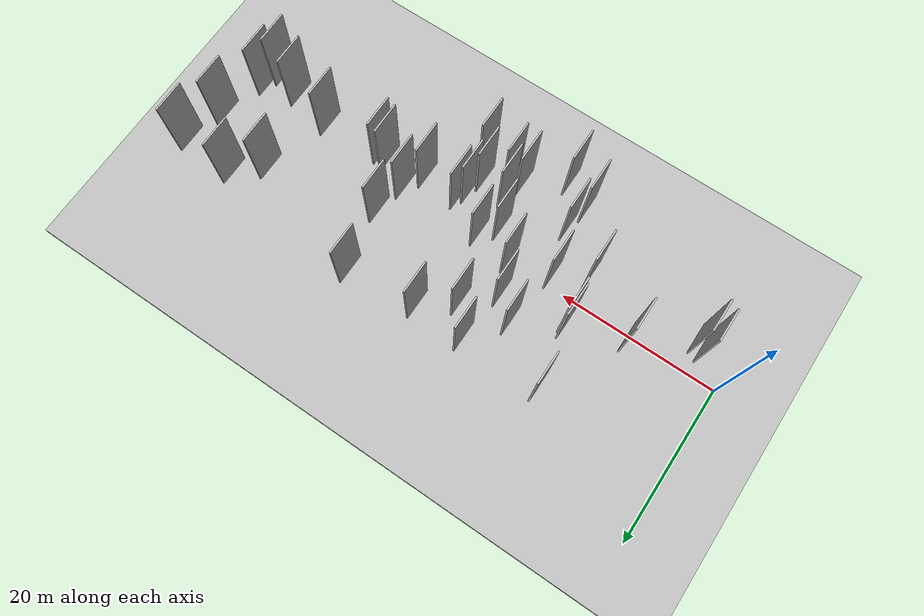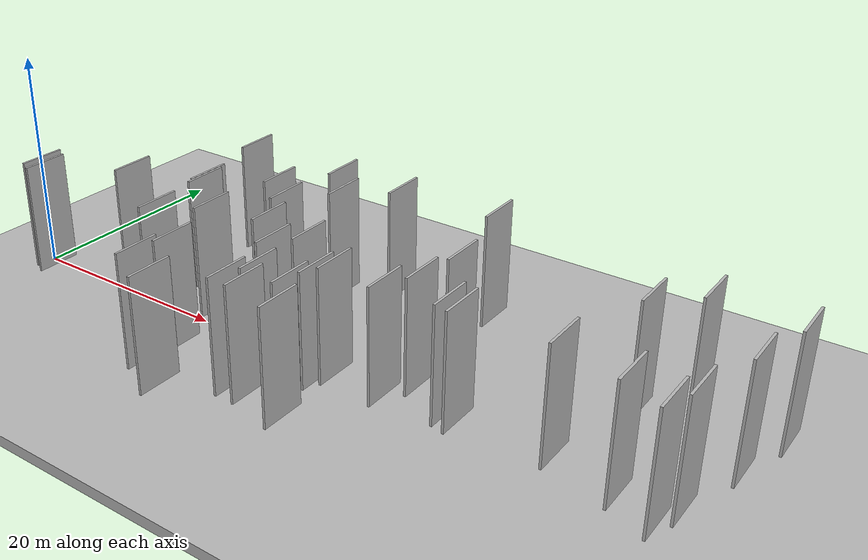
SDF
<?xml version="1.0" encoding="utf-8"?>

<sdf version="1.6">

   <world name="default">

      <gui fullscreen="0">

         <camera name="user_camera">

            <pose>-15 0 4.57585 0 0 0</pose>

            <view_controller>orbit</view_controller>

         </camera>

      </gui>

      <scene>

         <sky>

           <clouds>

             <speed>12</speed>

           </clouds>

         </sky>

         <ambient>0.4 0.4 0.4 1</ambient>

         <background>0.7 0.7 0.7 1</background>

         <shadows>1</shadows>

      </scene>

      <gravity>0 0 -9.8066</gravity>

      <magnetic_field>6e-06 2.3e-05 -4.2e-05</magnetic_field>

      <physics default="0" name="default_physics" type="ode">

         <ode>

            <solver>

               <type>quick</type>

               <iters>10</iters>

               <sor>1.0</sor>

               <use_dynamic_moi_rescaling>0</use_dynamic_moi_rescaling>

            </solver>

            <constraints>

               <cfm>0</cfm>

               <erp>0.2</erp>

               <contact_max_correcting_vel>100</contact_max_correcting_vel>

               <contact_surface_layer>0.001</contact_surface_layer>

            </constraints>

         </ode>

         <max_step_size>0.004</max_step_size>

         <real_time_factor>1</real_time_factor>

         <real_time_update_rate>250</real_time_update_rate>

      </physics>

      <light name="sun" type="directional">

         <cast_shadows>1</cast_shadows>

         <pose>0 0 10 0 0 0</pose>

         <diffuse>0.8 0.8 0.8 1</diffuse>

         <specular>0.2 0.2 0.2 1</specular>

         <attenuation>

            <range>1000</range>

            <constant>0.9</constant>

            <linear>0.01</linear>

            <quadratic>0.001</quadratic>

         </attenuation>

         <direction>-0.5 0.1 -0.9</direction>

      </light>

      <include>

         <name>ground_plane_1</name>

         <uri>model://HANNAS_ground_plane</uri>

         <pose>0 0 0  0 0 0</pose>

      </include>

      <include>

         <name>ground_plane_2</name>

         <uri>model://HANNAS_ground_plane</uri>

         <pose>100 0 0  0 0 0</pose>

      </include>

      <model name="HANNAS_wall_1">

         <static>1</static>

         <pose frame="">18.5343 -3.1271 2.5 0.000000 0.000000 1.570796</pose>

         <link name="link">

            <pose frame="">0 0 5.00 0 0 0</pose>

            <collision name="collision">

               <geometry>

                  <box>

                     <size>4.00 0.2 10.00</size>

                  </box>

               </geometry>

               <max_contacts>10</max_contacts>

               <surface>

                  <contact>

                     <ode/>

                  </contact>

                  <bounce/>

                  <friction>

                     <torsional>

                        <ode/>

                     </torsional>

                     <ode/>

                  </friction>

               </surface>

            </collision>

            <visual name="visual">

               <cast_shadows>0</cast_shadows>

               <geometry>

                  <box>

                     <size>4.00 0.2 10.00</size>

                  </box>

               </geometry>

               <material>

                  <script>

                     <uri>model://HANNAS_wall/materials/scripts</uri>

                     <uri>model://HANNAS_wall/materials/textures</uri>

                     <name>vrc/HANNAS_wall</name>

                  </script>

               </material>

            </visual>

            <self_collide>0</self_collide>

            <enable_wind>0</enable_wind>

            <kinematic>0</kinematic>

         </link>

      </model>

      <model name="HANNAS_wall_2">

         <static>1</static>

         <pose frame="">3.8009 -2.7287 2.5 0.000000 0.000000 1.570796</pose>

         <link name="link">

            <pose frame="">0 0 5.00 0 0 0</pose>

            <collision name="collision">

               <geometry>

                  <box>

                     <size>4.00 0.2 10.00</size>

                  </box>

               </geometry>

               <max_contacts>10</max_contacts>

               <surface>

                  <contact>

                     <ode/>

                  </contact>

                  <bounce/>

                  <friction>

                     <torsional>

                        <ode/>

                     </torsional>

                     <ode/>

                  </friction>

               </surface>

            </collision>

            <visual name="visual">

               <cast_shadows>0</cast_shadows>

               <geometry>

                  <box>

                     <size>4.00 0.2 10.00</size>

                  </box>

               </geometry>

               <material>

                  <script>

                     <uri>model://HANNAS_wall/materials/scripts</uri>

                     <uri>model://HANNAS_wall/materials/textures</uri>

                     <name>vrc/HANNAS_wall</name>

                  </script>

               </material>

            </visual>

            <self_collide>0</self_collide>

            <enable_wind>0</enable_wind>

            <kinematic>0</kinematic>

         </link>

      </model>

      <model name="HANNAS_wall_3">

         <static>1</static>

         <pose frame="">57.2128 6.6698 2.5 0.000000 0.000000 1.570796</pose>

         <link name="link">

            <pose frame="">0 0 5.00 0 0 0</pose>

            <collision name="collision">

               <geometry>

                  <box>

                     <size>4.00 0.2 10.00</size>

                  </box>

               </geometry>

               <max_contacts>10</max_contacts>

               <surface>

                  <contact>

                     <ode/>

                  </contact>

                  <bounce/>

                  <friction>

                     <torsional>

                        <ode/>

                     </torsional>

                     <ode/>

                  </friction>

               </surface>

            </collision>

            <visual name="visual">

               <cast_shadows>0</cast_shadows>

               <geometry>

                  <box>

                     <size>4.00 0.2 10.00</size>

                  </box>

               </geometry>

               <material>

                  <script>

                     <uri>model://HANNAS_wall/materials/scripts</uri>

                     <uri>model://HANNAS_wall/materials/textures</uri>

                     <name>vrc/HANNAS_wall</name>

                  </script>

               </material>

            </visual>

            <self_collide>0</self_collide>

            <enable_wind>0</enable_wind>

            <kinematic>0</kinematic>

         </link>

      </model>

      <model name="HANNAS_wall_4">

         <static>1</static>

         <pose frame="">29.1530 7.8941 2.5 0.000000 0.000000 1.570796</pose>

         <link name="link">

            <pose frame="">0 0 5.00 0 0 0</pose>

            <collision name="collision">

               <geometry>

                  <box>

                     <size>4.00 0.2 10.00</size>

                  </box>

               </geometry>

               <max_contacts>10</max_contacts>

               <surface>

                  <contact>

                     <ode/>

                  </contact>

                  <bounce/>

                  <friction>

                     <torsional>

                        <ode/>

                     </torsional>

                     <ode/>

                  </friction>

               </surface>

            </collision>

            <visual name="visual">

               <cast_shadows>0</cast_shadows>

               <geometry>

                  <box>

                     <size>4.00 0.2 10.00</size>

                  </box>

               </geometry>

               <material>

                  <script>

                     <uri>model://HANNAS_wall/materials/scripts</uri>

                     <uri>model://HANNAS_wall/materials/textures</uri>

                     <name>vrc/HANNAS_wall</name>

                  </script>

               </material>

            </visual>

            <self_collide>0</self_collide>

            <enable_wind>0</enable_wind>

            <kinematic>0</kinematic>

         </link>

      </model>

      <model name="HANNAS_wall_5">

         <static>1</static>

         <pose frame="">35.2060 -6.3021 2.5 0.000000 0.000000 1.570796</pose>

         <link name="link">

            <pose frame="">0 0 5.00 0 0 0</pose>

            <collision name="collision">

               <geometry>

                  <box>

                     <size>4.00 0.2 10.00</size>

                  </box>

               </geometry>

               <max_contacts>10</max_contacts>

               <surface>

                  <contact>

                     <ode/>

                  </contact>

                  <bounce/>

                  <friction>

                     <torsional>

                        <ode/>

                     </torsional>

                     <ode/>

                  </friction>

               </surface>

            </collision>

            <visual name="visual">

               <cast_shadows>0</cast_shadows>

               <geometry>

                  <box>

                     <size>4.00 0.2 10.00</size>

                  </box>

               </geometry>

               <material>

                  <script>

                     <uri>model://HANNAS_wall/materials/scripts</uri>

                     <uri>model://HANNAS_wall/materials/textures</uri>

                     <name>vrc/HANNAS_wall</name>

                  </script>

               </material>

            </visual>

            <self_collide>0</self_collide>

            <enable_wind>0</enable_wind>

            <kinematic>0</kinematic>

         </link>

      </model>

      <model name="HANNAS_wall_6">

         <static>1</static>

         <pose frame="">54.7465 -1.9026 2.5 0.000000 0.000000 1.570796</pose>

         <link name="link">

            <pose frame="">0 0 5.00 0 0 0</pose>

            <collision name="collision">

               <geometry>

                  <box>

                     <size>4.00 0.2 10.00</size>

                  </box>

               </geometry>

               <max_contacts>10</max_contacts>

               <surface>

                  <contact>

                     <ode/>

                  </contact>

                  <bounce/>

                  <friction>

                     <torsional>

                        <ode/>

                     </torsional>

                     <ode/>

                  </friction>

               </surface>

            </collision>

            <visual name="visual">

               <cast_shadows>0</cast_shadows>

               <geometry>

                  <box>

                     <size>4.00 0.2 10.00</size>

                  </box>

               </geometry>

               <material>

                  <script>

                     <uri>model://HANNAS_wall/materials/scripts</uri>

                     <uri>model://HANNAS_wall/materials/textures</uri>

                     <name>vrc/HANNAS_wall</name>

                  </script>

               </material>

            </visual>

            <self_collide>0</self_collide>

            <enable_wind>0</enable_wind>

            <kinematic>0</kinematic>

         </link>

      </model>

      <model name="HANNAS_wall_7">

         <static>1</static>

         <pose frame="">4.8505 -3.2533 2.5 0.000000 0.000000 1.570796</pose>

         <link name="link">

            <pose frame="">0 0 5.00 0 0 0</pose>

            <collision name="collision">

               <geometry>

                  <box>

                     <size>4.00 0.2 10.00</size>

                  </box>

               </geometry>

               <max_contacts>10</max_contacts>

               <surface>

                  <contact>

                     <ode/>

                  </contact>

                  <bounce/>

                  <friction>

                     <torsional>

                        <ode/>

                     </torsional>

                     <ode/>

                  </friction>

               </surface>

            </collision>

            <visual name="visual">

               <cast_shadows>0</cast_shadows>

               <geometry>

                  <box>

                     <size>4.00 0.2 10.00</size>

                  </box>

               </geometry>

               <material>

                  <script>

                     <uri>model://HANNAS_wall/materials/scripts</uri>

                     <uri>model://HANNAS_wall/materials/textures</uri>

                     <name>vrc/HANNAS_wall</name>

                  </script>

               </material>

            </visual>

            <self_collide>0</self_collide>

            <enable_wind>0</enable_wind>

            <kinematic>0</kinematic>

         </link>

      </model>

      <model name="HANNAS_wall_8">

         <static>1</static>

         <pose frame="">32.0122 -0.2082 2.5 0.000000 0.000000 1.570796</pose>

         <link name="link">

            <pose frame="">0 0 5.00 0 0 0</pose>

            <collision name="collision">

               <geometry>

                  <box>

                     <size>4.00 0.2 10.00</size>

                  </box>

               </geometry>

               <max_contacts>10</max_contacts>

               <surface>

                  <contact>

                     <ode/>

                  </contact>

                  <bounce/>

                  <friction>

                     <torsional>

                        <ode/>

                     </torsional>

                     <ode/>

                  </friction>

               </surface>

            </collision>

            <visual name="visual">

               <cast_shadows>0</cast_shadows>

               <geometry>

                  <box>

                     <size>4.00 0.2 10.00</size>

                  </box>

               </geometry>

               <material>

                  <script>

                     <uri>model://HANNAS_wall/materials/scripts</uri>

                     <uri>model://HANNAS_wall/materials/textures</uri>

                     <name>vrc/HANNAS_wall</name>

                  </script>

               </material>

            </visual>

            <self_collide>0</self_collide>

            <enable_wind>0</enable_wind>

            <kinematic>0</kinematic>

         </link>

      </model>

      <model name="HANNAS_wall_9">

         <static>1</static>

         <pose frame="">22.2011 -0.6261 2.5 0.000000 0.000000 1.570796</pose>

         <link name="link">

            <pose frame="">0 0 5.00 0 0 0</pose>

            <collision name="collision">

               <geometry>

                  <box>

                     <size>4.00 0.2 10.00</size>

                  </box>

               </geometry>

               <max_contacts>10</max_contacts>

               <surface>

                  <contact>

                     <ode/>

                  </contact>

                  <bounce/>

                  <friction>

                     <torsional>

                        <ode/>

                     </torsional>

                     <ode/>

                  </friction>

               </surface>

            </collision>

            <visual name="visual">

               <cast_shadows>0</cast_shadows>

               <geometry>

                  <box>

                     <size>4.00 0.2 10.00</size>

                  </box>

               </geometry>

               <material>

                  <script>

                     <uri>model://HANNAS_wall/materials/scripts</uri>

                     <uri>model://HANNAS_wall/materials/textures</uri>

                     <name>vrc/HANNAS_wall</name>

                  </script>

               </material>

            </visual>

            <self_collide>0</self_collide>

            <enable_wind>0</enable_wind>

            <kinematic>0</kinematic>

         </link>

      </model>

      <model name="HANNAS_wall_10">

         <static>1</static>

         <pose frame="">33.0554 10.9576 2.5 0.000000 0.000000 1.570796</pose>

         <link name="link">

            <pose frame="">0 0 5.00 0 0 0</pose>

            <collision name="collision">

               <geometry>

                  <box>

                     <size>4.00 0.2 10.00</size>

                  </box>

               </geometry>

               <max_contacts>10</max_contacts>

               <surface>

                  <contact>

                     <ode/>

                  </contact>

                  <bounce/>

                  <friction>

                     <torsional>

                        <ode/>

                     </torsional>

                     <ode/>

                  </friction>

               </surface>

            </collision>

            <visual name="visual">

               <cast_shadows>0</cast_shadows>

               <geometry>

                  <box>

                     <size>4.00 0.2 10.00</size>

                  </box>

               </geometry>

               <material>

                  <script>

                     <uri>model://HANNAS_wall/materials/scripts</uri>

                     <uri>model://HANNAS_wall/materials/textures</uri>

                     <name>vrc/HANNAS_wall</name>

                  </script>

               </material>

            </visual>

            <self_collide>0</self_collide>

            <enable_wind>0</enable_wind>

            <kinematic>0</kinematic>

         </link>

      </model>

      <model name="HANNAS_wall_11">

         <static>1</static>

         <pose frame="">42.4873 -0.2093 2.5 0.000000 0.000000 1.570796</pose>

         <link name="link">

            <pose frame="">0 0 5.00 0 0 0</pose>

            <collision name="collision">

               <geometry>

                  <box>

                     <size>4.00 0.2 10.00</size>

                  </box>

               </geometry>

               <max_contacts>10</max_contacts>

               <surface>

                  <contact>

                     <ode/>

                  </contact>

                  <bounce/>

                  <friction>

                     <torsional>

                        <ode/>

                     </torsional>

                     <ode/>

                  </friction>

               </surface>

            </collision>

            <visual name="visual">

               <cast_shadows>0</cast_shadows>

               <geometry>

                  <box>

                     <size>4.00 0.2 10.00</size>

                  </box>

               </geometry>

               <material>

                  <script>

                     <uri>model://HANNAS_wall/materials/scripts</uri>

                     <uri>model://HANNAS_wall/materials/textures</uri>

                     <name>vrc/HANNAS_wall</name>

                  </script>

               </material>

            </visual>

            <self_collide>0</self_collide>

            <enable_wind>0</enable_wind>

            <kinematic>0</kinematic>

         </link>

      </model>

      <model name="HANNAS_wall_12">

         <static>1</static>

         <pose frame="">17.9022 3.5335 2.5 0.000000 0.000000 1.570796</pose>

         <link name="link">

            <pose frame="">0 0 5.00 0 0 0</pose>

            <collision name="collision">

               <geometry>

                  <box>

                     <size>4.00 0.2 10.00</size>

                  </box>

               </geometry>

               <max_contacts>10</max_contacts>

               <surface>

                  <contact>

                     <ode/>

                  </contact>

                  <bounce/>

                  <friction>

                     <torsional>

                        <ode/>

                     </torsional>

                     <ode/>

                  </friction>

               </surface>

            </collision>

            <visual name="visual">

               <cast_shadows>0</cast_shadows>

               <geometry>

                  <box>

                     <size>4.00 0.2 10.00</size>

                  </box>

               </geometry>

               <material>

                  <script>

                     <uri>model://HANNAS_wall/materials/scripts</uri>

                     <uri>model://HANNAS_wall/materials/textures</uri>

                     <name>vrc/HANNAS_wall</name>

                  </script>

               </material>

            </visual>

            <self_collide>0</self_collide>

            <enable_wind>0</enable_wind>

            <kinematic>0</kinematic>

         </link>

      </model>

      <model name="HANNAS_wall_13">

         <static>1</static>

         <pose frame="">25.8393 4.4375 2.5 0.000000 0.000000 1.570796</pose>

         <link name="link">

            <pose frame="">0 0 5.00 0 0 0</pose>

            <collision name="collision">

               <geometry>

                  <box>

                     <size>4.00 0.2 10.00</size>

                  </box>

               </geometry>

               <max_contacts>10</max_contacts>

               <surface>

                  <contact>

                     <ode/>

                  </contact>

                  <bounce/>

                  <friction>

                     <torsional>

                        <ode/>

                     </torsional>

                     <ode/>

                  </friction>

               </surface>

            </collision>

            <visual name="visual">

               <cast_shadows>0</cast_shadows>

               <geometry>

                  <box>

                     <size>4.00 0.2 10.00</size>

                  </box>

               </geometry>

               <material>

                  <script>

                     <uri>model://HANNAS_wall/materials/scripts</uri>

                     <uri>model://HANNAS_wall/materials/textures</uri>

                     <name>vrc/HANNAS_wall</name>

                  </script>

               </material>

            </visual>

            <self_collide>0</self_collide>

            <enable_wind>0</enable_wind>

            <kinematic>0</kinematic>

         </link>

      </model>

      <model name="HANNAS_wall_14">

         <static>1</static>

         <pose frame="">63.3022 -4.3119 2.5 0.000000 0.000000 1.570796</pose>

         <link name="link">

            <pose frame="">0 0 5.00 0 0 0</pose>

            <collision name="collision">

               <geometry>

                  <box>

                     <size>4.00 0.2 10.00</size>

                  </box>

               </geometry>

               <max_contacts>10</max_contacts>

               <surface>

                  <contact>

                     <ode/>

                  </contact>

                  <bounce/>

                  <friction>

                     <torsional>

                        <ode/>

                     </torsional>

                     <ode/>

                  </friction>

               </surface>

            </collision>

            <visual name="visual">

               <cast_shadows>0</cast_shadows>

               <geometry>

                  <box>

                     <size>4.00 0.2 10.00</size>

                  </box>

               </geometry>

               <material>

                  <script>

                     <uri>model://HANNAS_wall/materials/scripts</uri>

                     <uri>model://HANNAS_wall/materials/textures</uri>

                     <name>vrc/HANNAS_wall</name>

                  </script>

               </material>

            </visual>

            <self_collide>0</self_collide>

            <enable_wind>0</enable_wind>

            <kinematic>0</kinematic>

         </link>

      </model>

      <model name="HANNAS_wall_15">

         <static>1</static>

         <pose frame="">23.1520 -9.7399 2.5 0.000000 0.000000 1.570796</pose>

         <link name="link">

            <pose frame="">0 0 5.00 0 0 0</pose>

            <collision name="collision">

               <geometry>

                  <box>

                     <size>4.00 0.2 10.00</size>

                  </box>

               </geometry>

               <max_contacts>10</max_contacts>

               <surface>

                  <contact>

                     <ode/>

                  </contact>

                  <bounce/>

                  <friction>

                     <torsional>

                        <ode/>

                     </torsional>

                     <ode/>

                  </friction>

               </surface>

            </collision>

            <visual name="visual">

               <cast_shadows>0</cast_shadows>

               <geometry>

                  <box>

                     <size>4.00 0.2 10.00</size>

                  </box>

               </geometry>

               <material>

                  <script>

                     <uri>model://HANNAS_wall/materials/scripts</uri>

                     <uri>model://HANNAS_wall/materials/textures</uri>

                     <name>vrc/HANNAS_wall</name>

                  </script>

               </material>

            </visual>

            <self_collide>0</self_collide>

            <enable_wind>0</enable_wind>

            <kinematic>0</kinematic>

         </link>

      </model>

      <model name="HANNAS_wall_16">

         <static>1</static>

         <pose frame="">16.6386 11.2837 2.5 0.000000 0.000000 1.570796</pose>

         <link name="link">

            <pose frame="">0 0 5.00 0 0 0</pose>

            <collision name="collision">

               <geometry>

                  <box>

                     <size>4.00 0.2 10.00</size>

                  </box>

               </geometry>

               <max_contacts>10</max_contacts>

               <surface>

                  <contact>

                     <ode/>

                  </contact>

                  <bounce/>

                  <friction>

                     <torsional>

                        <ode/>

                     </torsional>

                     <ode/>

                  </friction>

               </surface>

            </collision>

            <visual name="visual">

               <cast_shadows>0</cast_shadows>

               <geometry>

                  <box>

                     <size>4.00 0.2 10.00</size>

                  </box>

               </geometry>

               <material>

                  <script>

                     <uri>model://HANNAS_wall/materials/scripts</uri>

                     <uri>model://HANNAS_wall/materials/textures</uri>

                     <name>vrc/HANNAS_wall</name>

                  </script>

               </material>

            </visual>

            <self_collide>0</self_collide>

            <enable_wind>0</enable_wind>

            <kinematic>0</kinematic>

         </link>

      </model>

      <model name="HANNAS_wall_17">

         <static>1</static>

         <pose frame="">46.1062 -2.1696 2.5 0.000000 0.000000 1.570796</pose>

         <link name="link">

            <pose frame="">0 0 5.00 0 0 0</pose>

            <collision name="collision">

               <geometry>

                  <box>

                     <size>4.00 0.2 10.00</size>

                  </box>

               </geometry>

               <max_contacts>10</max_contacts>

               <surface>

                  <contact>

                     <ode/>

                  </contact>

                  <bounce/>

                  <friction>

                     <torsional>

                        <ode/>

                     </torsional>

                     <ode/>

                  </friction>

               </surface>

            </collision>

            <visual name="visual">

               <cast_shadows>0</cast_shadows>

               <geometry>

                  <box>

                     <size>4.00 0.2 10.00</size>

                  </box>

               </geometry>

               <material>

                  <script>

                     <uri>model://HANNAS_wall/materials/scripts</uri>

                     <uri>model://HANNAS_wall/materials/textures</uri>

                     <name>vrc/HANNAS_wall</name>

                  </script>

               </material>

            </visual>

            <self_collide>0</self_collide>

            <enable_wind>0</enable_wind>

            <kinematic>0</kinematic>

         </link>

      </model>

      <model name="HANNAS_wall_18">

         <static>1</static>

         <pose frame="">18.1686 2.8685 2.5 0.000000 0.000000 1.570796</pose>

         <link name="link">

            <pose frame="">0 0 5.00 0 0 0</pose>

            <collision name="collision">

               <geometry>

                  <box>

                     <size>4.00 0.2 10.00</size>

                  </box>

               </geometry>

               <max_contacts>10</max_contacts>

               <surface>

                  <contact>

                     <ode/>

                  </contact>

                  <bounce/>

                  <friction>

                     <torsional>

                        <ode/>

                     </torsional>

                     <ode/>

                  </friction>

               </surface>

            </collision>

            <visual name="visual">

               <cast_shadows>0</cast_shadows>

               <geometry>

                  <box>

                     <size>4.00 0.2 10.00</size>

                  </box>

               </geometry>

               <material>

                  <script>

                     <uri>model://HANNAS_wall/materials/scripts</uri>

                     <uri>model://HANNAS_wall/materials/textures</uri>

                     <name>vrc/HANNAS_wall</name>

                  </script>

               </material>

            </visual>

            <self_collide>0</self_collide>

            <enable_wind>0</enable_wind>

            <kinematic>0</kinematic>

         </link>

      </model>

      <model name="HANNAS_wall_19">

         <static>1</static>

         <pose frame="">60.4916 9.5534 2.5 0.000000 0.000000 1.570796</pose>

         <link name="link">

            <pose frame="">0 0 5.00 0 0 0</pose>

            <collision name="collision">

               <geometry>

                  <box>

                     <size>4.00 0.2 10.00</size>

                  </box>

               </geometry>

               <max_contacts>10</max_contacts>

               <surface>

                  <contact>

                     <ode/>

                  </contact>

                  <bounce/>

                  <friction>

                     <torsional>

                        <ode/>

                     </torsional>

                     <ode/>

                  </friction>

               </surface>

            </collision>

            <visual name="visual">

               <cast_shadows>0</cast_shadows>

               <geometry>

                  <box>

                     <size>4.00 0.2 10.00</size>

                  </box>

               </geometry>

               <material>

                  <script>

                     <uri>model://HANNAS_wall/materials/scripts</uri>

                     <uri>model://HANNAS_wall/materials/textures</uri>

                     <name>vrc/HANNAS_wall</name>

                  </script>

               </material>

            </visual>

            <self_collide>0</self_collide>

            <enable_wind>0</enable_wind>

            <kinematic>0</kinematic>

         </link>

      </model>

      <model name="HANNAS_wall_20">

         <static>1</static>

         <pose frame="">43.3171 3.9262 2.5 0.000000 0.000000 1.570796</pose>

         <link name="link">

            <pose frame="">0 0 5.00 0 0 0</pose>

            <collision name="collision">

               <geometry>

                  <box>

                     <size>4.00 0.2 10.00</size>

                  </box>

               </geometry>

               <max_contacts>10</max_contacts>

               <surface>

                  <contact>

                     <ode/>

                  </contact>

                  <bounce/>

                  <friction>

                     <torsional>

                        <ode/>

                     </torsional>

                     <ode/>

                  </friction>

               </surface>

            </collision>

            <visual name="visual">

               <cast_shadows>0</cast_shadows>

               <geometry>

                  <box>

                     <size>4.00 0.2 10.00</size>

                  </box>

               </geometry>

               <material>

                  <script>

                     <uri>model://HANNAS_wall/materials/scripts</uri>

                     <uri>model://HANNAS_wall/materials/textures</uri>

                     <name>vrc/HANNAS_wall</name>

                  </script>

               </material>

            </visual>

            <self_collide>0</self_collide>

            <enable_wind>0</enable_wind>

            <kinematic>0</kinematic>

         </link>

      </model>

      <model name="HANNAS_wall_21">

         <static>1</static>

         <pose frame="">32.8287 -8.5125 2.5 0.000000 0.000000 1.570796</pose>

         <link name="link">

            <pose frame="">0 0 5.00 0 0 0</pose>

            <collision name="collision">

               <geometry>

                  <box>

                     <size>4.00 0.2 10.00</size>

                  </box>

               </geometry>

               <max_contacts>10</max_contacts>

               <surface>

                  <contact>

                     <ode/>

                  </contact>

                  <bounce/>

                  <friction>

                     <torsional>

                        <ode/>

                     </torsional>

                     <ode/>

                  </friction>

               </surface>

            </collision>

            <visual name="visual">

               <cast_shadows>0</cast_shadows>

               <geometry>

                  <box>

                     <size>4.00 0.2 10.00</size>

                  </box>

               </geometry>

               <material>

                  <script>

                     <uri>model://HANNAS_wall/materials/scripts</uri>

                     <uri>model://HANNAS_wall/materials/textures</uri>

                     <name>vrc/HANNAS_wall</name>

                  </script>

               </material>

            </visual>

            <self_collide>0</self_collide>

            <enable_wind>0</enable_wind>

            <kinematic>0</kinematic>

         </link>

      </model>

      <model name="HANNAS_wall_22">

         <static>1</static>

         <pose frame="">41.8177 11.7944 2.5 0.000000 0.000000 1.570796</pose>

         <link name="link">

            <pose frame="">0 0 5.00 0 0 0</pose>

            <collision name="collision">

               <geometry>

                  <box>

                     <size>4.00 0.2 10.00</size>

                  </box>

               </geometry>

               <max_contacts>10</max_contacts>

               <surface>

                  <contact>

                     <ode/>

                  </contact>

                  <bounce/>

                  <friction>

                     <torsional>

                        <ode/>

                     </torsional>

                     <ode/>

                  </friction>

               </surface>

            </collision>

            <visual name="visual">

               <cast_shadows>0</cast_shadows>

               <geometry>

                  <box>

                     <size>4.00 0.2 10.00</size>

                  </box>

               </geometry>

               <material>

                  <script>

                     <uri>model://HANNAS_wall/materials/scripts</uri>

                     <uri>model://HANNAS_wall/materials/textures</uri>

                     <name>vrc/HANNAS_wall</name>

                  </script>

               </material>

            </visual>

            <self_collide>0</self_collide>

            <enable_wind>0</enable_wind>

            <kinematic>0</kinematic>

         </link>

      </model>

      <model name="HANNAS_wall_23">

         <static>1</static>

         <pose frame="">27.3106 0.5772 2.5 0.000000 0.000000 1.570796</pose>

         <link name="link">

            <pose frame="">0 0 5.00 0 0 0</pose>

            <collision name="collision">

               <geometry>

                  <box>

                     <size>4.00 0.2 10.00</size>

                  </box>

               </geometry>

               <max_contacts>10</max_contacts>

               <surface>

                  <contact>

                     <ode/>

                  </contact>

                  <bounce/>

                  <friction>

                     <torsional>

                        <ode/>

                     </torsional>

                     <ode/>

                  </friction>

               </surface>

            </collision>

            <visual name="visual">

               <cast_shadows>0</cast_shadows>

               <geometry>

                  <box>

                     <size>4.00 0.2 10.00</size>

                  </box>

               </geometry>

               <material>

                  <script>

                     <uri>model://HANNAS_wall/materials/scripts</uri>

                     <uri>model://HANNAS_wall/materials/textures</uri>

                     <name>vrc/HANNAS_wall</name>

                  </script>

               </material>

            </visual>

            <self_collide>0</self_collide>

            <enable_wind>0</enable_wind>

            <kinematic>0</kinematic>

         </link>

      </model>

      <model name="HANNAS_wall_24">

         <static>1</static>

         <pose frame="">26.5487 -11.6749 2.5 0.000000 0.000000 1.570796</pose>

         <link name="link">

            <pose frame="">0 0 5.00 0 0 0</pose>

            <collision name="collision">

               <geometry>

                  <box>

                     <size>4.00 0.2 10.00</size>

                  </box>

               </geometry>

               <max_contacts>10</max_contacts>

               <surface>

                  <contact>

                     <ode/>

                  </contact>

                  <bounce/>

                  <friction>

                     <torsional>

                        <ode/>

                     </torsional>

                     <ode/>

                  </friction>

               </surface>

            </collision>

            <visual name="visual">

               <cast_shadows>0</cast_shadows>

               <geometry>

                  <box>

                     <size>4.00 0.2 10.00</size>

                  </box>

               </geometry>

               <material>

                  <script>

                     <uri>model://HANNAS_wall/materials/scripts</uri>

                     <uri>model://HANNAS_wall/materials/textures</uri>

                     <name>vrc/HANNAS_wall</name>

                  </script>

               </material>

            </visual>

            <self_collide>0</self_collide>

            <enable_wind>0</enable_wind>

            <kinematic>0</kinematic>

         </link>

      </model>

      <model name="HANNAS_wall_25">

         <static>1</static>

         <pose frame="">31.9966 -6.0522 2.5 0.000000 0.000000 1.570796</pose>

         <link name="link">

            <pose frame="">0 0 5.00 0 0 0</pose>

            <collision name="collision">

               <geometry>

                  <box>

                     <size>4.00 0.2 10.00</size>

                  </box>

               </geometry>

               <max_contacts>10</max_contacts>

               <surface>

                  <contact>

                     <ode/>

                  </contact>

                  <bounce/>

                  <friction>

                     <torsional>

                        <ode/>

                     </torsional>

                     <ode/>

                  </friction>

               </surface>

            </collision>

            <visual name="visual">

               <cast_shadows>0</cast_shadows>

               <geometry>

                  <box>

                     <size>4.00 0.2 10.00</size>

                  </box>

               </geometry>

               <material>

                  <script>

                     <uri>model://HANNAS_wall/materials/scripts</uri>

                     <uri>model://HANNAS_wall/materials/textures</uri>

                     <name>vrc/HANNAS_wall</name>

                  </script>

               </material>

            </visual>

            <self_collide>0</self_collide>

            <enable_wind>0</enable_wind>

            <kinematic>0</kinematic>

         </link>

      </model>

      <model name="HANNAS_wall_26">

         <static>1</static>

         <pose frame="">47.2587 -2.4263 2.5 0.000000 0.000000 1.570796</pose>

         <link name="link">

            <pose frame="">0 0 5.00 0 0 0</pose>

            <collision name="collision">

               <geometry>

                  <box>

                     <size>4.00 0.2 10.00</size>

                  </box>

               </geometry>

               <max_contacts>10</max_contacts>

               <surface>

                  <contact>

                     <ode/>

                  </contact>

                  <bounce/>

                  <friction>

                     <torsional>

                        <ode/>

                     </torsional>

                     <ode/>

                  </friction>

               </surface>

            </collision>

            <visual name="visual">

               <cast_shadows>0</cast_shadows>

               <geometry>

                  <box>

                     <size>4.00 0.2 10.00</size>

                  </box>

               </geometry>

               <material>

                  <script>

                     <uri>model://HANNAS_wall/materials/scripts</uri>

                     <uri>model://HANNAS_wall/materials/textures</uri>

                     <name>vrc/HANNAS_wall</name>

                  </script>

               </material>

            </visual>

            <self_collide>0</self_collide>

            <enable_wind>0</enable_wind>

            <kinematic>0</kinematic>

         </link>

      </model>

      <model name="HANNAS_wall_27">

         <static>1</static>

         <pose frame="">64.1908 -2.1054 2.5 0.000000 0.000000 1.570796</pose>

         <link name="link">

            <pose frame="">0 0 5.00 0 0 0</pose>

            <collision name="collision">

               <geometry>

                  <box>

                     <size>4.00 0.2 10.00</size>

                  </box>

               </geometry>

               <max_contacts>10</max_contacts>

               <surface>

                  <contact>

                     <ode/>

                  </contact>

                  <bounce/>

                  <friction>

                     <torsional>

                        <ode/>

                     </torsional>

                     <ode/>

                  </friction>

               </surface>

            </collision>

            <visual name="visual">

               <cast_shadows>0</cast_shadows>

               <geometry>

                  <box>

                     <size>4.00 0.2 10.00</size>

                  </box>

               </geometry>

               <material>

                  <script>

                     <uri>model://HANNAS_wall/materials/scripts</uri>

                     <uri>model://HANNAS_wall/materials/textures</uri>

                     <name>vrc/HANNAS_wall</name>

                  </script>

               </material>

            </visual>

            <self_collide>0</self_collide>

            <enable_wind>0</enable_wind>

            <kinematic>0</kinematic>

         </link>

      </model>

      <model name="HANNAS_wall_28">

         <static>1</static>

         <pose frame="">31.0960 -8.4708 2.5 0.000000 0.000000 1.570796</pose>

         <link name="link">

            <pose frame="">0 0 5.00 0 0 0</pose>

            <collision name="collision">

               <geometry>

                  <box>

                     <size>4.00 0.2 10.00</size>

                  </box>

               </geometry>

               <max_contacts>10</max_contacts>

               <surface>

                  <contact>

                     <ode/>

                  </contact>

                  <bounce/>

                  <friction>

                     <torsional>

                        <ode/>

                     </torsional>

                     <ode/>

                  </friction>

               </surface>

            </collision>

            <visual name="visual">

               <cast_shadows>0</cast_shadows>

               <geometry>

                  <box>

                     <size>4.00 0.2 10.00</size>

                  </box>

               </geometry>

               <material>

                  <script>

                     <uri>model://HANNAS_wall/materials/scripts</uri>

                     <uri>model://HANNAS_wall/materials/textures</uri>

                     <name>vrc/HANNAS_wall</name>

                  </script>

               </material>

            </visual>

            <self_collide>0</self_collide>

            <enable_wind>0</enable_wind>

            <kinematic>0</kinematic>

         </link>

      </model>

      <model name="HANNAS_wall_29">

         <static>1</static>

         <pose frame="">36.4645 -2.7436 2.5 0.000000 0.000000 1.570796</pose>

         <link name="link">

            <pose frame="">0 0 5.00 0 0 0</pose>

            <collision name="collision">

               <geometry>

                  <box>

                     <size>4.00 0.2 10.00</size>

                  </box>

               </geometry>

               <max_contacts>10</max_contacts>

               <surface>

                  <contact>

                     <ode/>

                  </contact>

                  <bounce/>

                  <friction>

                     <torsional>

                        <ode/>

                     </torsional>

                     <ode/>

                  </friction>

               </surface>

            </collision>

            <visual name="visual">

               <cast_shadows>0</cast_shadows>

               <geometry>

                  <box>

                     <size>4.00 0.2 10.00</size>

                  </box>

               </geometry>

               <material>

                  <script>

                     <uri>model://HANNAS_wall/materials/scripts</uri>

                     <uri>model://HANNAS_wall/materials/textures</uri>

                     <name>vrc/HANNAS_wall</name>

                  </script>

               </material>

            </visual>

            <self_collide>0</self_collide>

            <enable_wind>0</enable_wind>

            <kinematic>0</kinematic>

         </link>

      </model>

      <model name="HANNAS_wall_30">

         <static>1</static>

         <pose frame="">23.2448 6.6623 2.5 0.000000 0.000000 1.570796</pose>

         <link name="link">

            <pose frame="">0 0 5.00 0 0 0</pose>

            <collision name="collision">

               <geometry>

                  <box>

                     <size>4.00 0.2 10.00</size>

                  </box>

               </geometry>

               <max_contacts>10</max_contacts>

               <surface>

                  <contact>

                     <ode/>

                  </contact>

                  <bounce/>

                  <friction>

                     <torsional>

                        <ode/>

                     </torsional>

                     <ode/>

                  </friction>

               </surface>

            </collision>

            <visual name="visual">

               <cast_shadows>0</cast_shadows>

               <geometry>

                  <box>

                     <size>4.00 0.2 10.00</size>

                  </box>

               </geometry>

               <material>

                  <script>

                     <uri>model://HANNAS_wall/materials/scripts</uri>

                     <uri>model://HANNAS_wall/materials/textures</uri>

                     <name>vrc/HANNAS_wall</name>

                  </script>

               </material>

            </visual>

            <self_collide>0</self_collide>

            <enable_wind>0</enable_wind>

            <kinematic>0</kinematic>

         </link>

      </model>

      <model name="HANNAS_wall_31">

         <static>1</static>

         <pose frame="">11.3523 0.9275 2.5 0.000000 0.000000 1.570796</pose>

         <link name="link">

            <pose frame="">0 0 5.00 0 0 0</pose>

            <collision name="collision">

               <geometry>

                  <box>

                     <size>4.00 0.2 10.00</size>

                  </box>

               </geometry>

               <max_contacts>10</max_contacts>

               <surface>

                  <contact>

                     <ode/>

                  </contact>

                  <bounce/>

                  <friction>

                     <torsional>

                        <ode/>

                     </torsional>

                     <ode/>

                  </friction>

               </surface>

            </collision>

            <visual name="visual">

               <cast_shadows>0</cast_shadows>

               <geometry>

                  <box>

                     <size>4.00 0.2 10.00</size>

                  </box>

               </geometry>

               <material>

                  <script>

                     <uri>model://HANNAS_wall/materials/scripts</uri>

                     <uri>model://HANNAS_wall/materials/textures</uri>

                     <name>vrc/HANNAS_wall</name>

                  </script>

               </material>

            </visual>

            <self_collide>0</self_collide>

            <enable_wind>0</enable_wind>

            <kinematic>0</kinematic>

         </link>

      </model>

      <model name="HANNAS_wall_32">

         <static>1</static>

         <pose frame="">60.0689 -3.1045 2.5 0.000000 0.000000 1.570796</pose>

         <link name="link">

            <pose frame="">0 0 5.00 0 0 0</pose>

            <collision name="collision">

               <geometry>

                  <box>

                     <size>4.00 0.2 10.00</size>

                  </box>

               </geometry>

               <max_contacts>10</max_contacts>

               <surface>

                  <contact>

                     <ode/>

                  </contact>

                  <bounce/>

                  <friction>

                     <torsional>

                        <ode/>

                     </torsional>

                     <ode/>

                  </friction>

               </surface>

            </collision>

            <visual name="visual">

               <cast_shadows>0</cast_shadows>

               <geometry>

                  <box>

                     <size>4.00 0.2 10.00</size>

                  </box>

               </geometry>

               <material>

                  <script>

                     <uri>model://HANNAS_wall/materials/scripts</uri>

                     <uri>model://HANNAS_wall/materials/textures</uri>

                     <name>vrc/HANNAS_wall</name>

                  </script>

               </material>

            </visual>

            <self_collide>0</self_collide>

            <enable_wind>0</enable_wind>

            <kinematic>0</kinematic>

         </link>

      </model>

      <model name="HANNAS_wall_33">

         <static>1</static>

         <pose frame="">26.6091 11.1644 2.5 0.000000 0.000000 1.570796</pose>

         <link name="link">

            <pose frame="">0 0 5.00 0 0 0</pose>

            <collision name="collision">

               <geometry>

                  <box>

                     <size>4.00 0.2 10.00</size>

                  </box>

               </geometry>

               <max_contacts>10</max_contacts>

               <surface>

                  <contact>

                     <ode/>

                  </contact>

                  <bounce/>

                  <friction>

                     <torsional>

                        <ode/>

                     </torsional>

                     <ode/>

                  </friction>

               </surface>

            </collision>

            <visual name="visual">

               <cast_shadows>0</cast_shadows>

               <geometry>

                  <box>

                     <size>4.00 0.2 10.00</size>

                  </box>

               </geometry>

               <material>

                  <script>

                     <uri>model://HANNAS_wall/materials/scripts</uri>

                     <uri>model://HANNAS_wall/materials/textures</uri>

                     <name>vrc/HANNAS_wall</name>

                  </script>

               </material>

            </visual>

            <self_collide>0</self_collide>

            <enable_wind>0</enable_wind>

            <kinematic>0</kinematic>

         </link>

      </model>

      <model name="HANNAS_wall_34">

         <static>1</static>

         <pose frame="">23.8078 -6.6245 2.5 0.000000 0.000000 1.570796</pose>

         <link name="link">

            <pose frame="">0 0 5.00 0 0 0</pose>

            <collision name="collision">

               <geometry>

                  <box>

                     <size>4.00 0.2 10.00</size>

                  </box>

               </geometry>

               <max_contacts>10</max_contacts>

               <surface>

                  <contact>

                     <ode/>

                  </contact>

                  <bounce/>

                  <friction>

                     <torsional>

                        <ode/>

                     </torsional>

                     <ode/>

                  </friction>

               </surface>

            </collision>

            <visual name="visual">

               <cast_shadows>0</cast_shadows>

               <geometry>

                  <box>

                     <size>4.00 0.2 10.00</size>

                  </box>

               </geometry>

               <material>

                  <script>

                     <uri>model://HANNAS_wall/materials/scripts</uri>

                     <uri>model://HANNAS_wall/materials/textures</uri>

                     <name>vrc/HANNAS_wall</name>

                  </script>

               </material>

            </visual>

            <self_collide>0</self_collide>

            <enable_wind>0</enable_wind>

            <kinematic>0</kinematic>

         </link>

      </model>

      <model name="HANNAS_wall_35">

         <static>1</static>

         <pose frame="">65.9127 3.8972 2.5 0.000000 0.000000 1.570796</pose>

         <link name="link">

            <pose frame="">0 0 5.00 0 0 0</pose>

            <collision name="collision">

               <geometry>

                  <box>

                     <size>4.00 0.2 10.00</size>

                  </box>

               </geometry>

               <max_contacts>10</max_contacts>

               <surface>

                  <contact>

                     <ode/>

                  </contact>

                  <bounce/>

                  <friction>

                     <torsional>

                        <ode/>

                     </torsional>

                     <ode/>

                  </friction>

               </surface>

            </collision>

            <visual name="visual">

               <cast_shadows>0</cast_shadows>

               <geometry>

                  <box>

                     <size>4.00 0.2 10.00</size>

                  </box>

               </geometry>

               <material>

                  <script>

                     <uri>model://HANNAS_wall/materials/scripts</uri>

                     <uri>model://HANNAS_wall/materials/textures</uri>

                     <name>vrc/HANNAS_wall</name>

                  </script>

               </material>

            </visual>

            <self_collide>0</self_collide>

            <enable_wind>0</enable_wind>

            <kinematic>0</kinematic>

         </link>

      </model>

      <model name="HANNAS_wall_36">

         <static>1</static>

         <pose frame="">30.1914 -2.2844 2.5 0.000000 0.000000 1.570796</pose>

         <link name="link">

            <pose frame="">0 0 5.00 0 0 0</pose>

            <collision name="collision">

               <geometry>

                  <box>

                     <size>4.00 0.2 10.00</size>

                  </box>

               </geometry>

               <max_contacts>10</max_contacts>

               <surface>

                  <contact>

                     <ode/>

                  </contact>

                  <bounce/>

                  <friction>

                     <torsional>

                        <ode/>

                     </torsional>

                     <ode/>

                  </friction>

               </surface>

            </collision>

            <visual name="visual">

               <cast_shadows>0</cast_shadows>

               <geometry>

                  <box>

                     <size>4.00 0.2 10.00</size>

                  </box>

               </geometry>

               <material>

                  <script>

                     <uri>model://HANNAS_wall/materials/scripts</uri>

                     <uri>model://HANNAS_wall/materials/textures</uri>

                     <name>vrc/HANNAS_wall</name>

                  </script>

               </material>

            </visual>

            <self_collide>0</self_collide>

            <enable_wind>0</enable_wind>

            <kinematic>0</kinematic>

         </link>

      </model>

      <model name="HANNAS_wall_37">

         <static>1</static>

         <pose frame="">35.8014 -4.0312 2.5 0.000000 0.000000 1.570796</pose>

         <link name="link">

            <pose frame="">0 0 5.00 0 0 0</pose>

            <collision name="collision">

               <geometry>

                  <box>

                     <size>4.00 0.2 10.00</size>

                  </box>

               </geometry>

               <max_contacts>10</max_contacts>

               <surface>

                  <contact>

                     <ode/>

                  </contact>

                  <bounce/>

                  <friction>

                     <torsional>

                        <ode/>

                     </torsional>

                     <ode/>

                  </friction>

               </surface>

            </collision>

            <visual name="visual">

               <cast_shadows>0</cast_shadows>

               <geometry>

                  <box>

                     <size>4.00 0.2 10.00</size>

                  </box>

               </geometry>

               <material>

                  <script>

                     <uri>model://HANNAS_wall/materials/scripts</uri>

                     <uri>model://HANNAS_wall/materials/textures</uri>

                     <name>vrc/HANNAS_wall</name>

                  </script>

               </material>

            </visual>

            <self_collide>0</self_collide>

            <enable_wind>0</enable_wind>

            <kinematic>0</kinematic>

         </link>

      </model>

      <model name="HANNAS_wall_38">

         <static>1</static>

         <pose frame="">67.3566 9.0460 2.5 0.000000 0.000000 1.570796</pose>

         <link name="link">

            <pose frame="">0 0 5.00 0 0 0</pose>

            <collision name="collision">

               <geometry>

                  <box>

                     <size>4.00 0.2 10.00</size>

                  </box>

               </geometry>

               <max_contacts>10</max_contacts>

               <surface>

                  <contact>

                     <ode/>

                  </contact>

                  <bounce/>

                  <friction>

                     <torsional>

                        <ode/>

                     </torsional>

                     <ode/>

                  </friction>

               </surface>

            </collision>

            <visual name="visual">

               <cast_shadows>0</cast_shadows>

               <geometry>

                  <box>

                     <size>4.00 0.2 10.00</size>

                  </box>

               </geometry>

               <material>

                  <script>

                     <uri>model://HANNAS_wall/materials/scripts</uri>

                     <uri>model://HANNAS_wall/materials/textures</uri>

                     <name>vrc/HANNAS_wall</name>

                  </script>

               </material>

            </visual>

            <self_collide>0</self_collide>

            <enable_wind>0</enable_wind>

            <kinematic>0</kinematic>

         </link>

      </model>

      <model name="HANNAS_wall_39">

         <static>1</static>

         <pose frame="">36.7794 -9.4271 2.5 0.000000 0.000000 1.570796</pose>

         <link name="link">

            <pose frame="">0 0 5.00 0 0 0</pose>

            <collision name="collision">

               <geometry>

                  <box>

                     <size>4.00 0.2 10.00</size>

                  </box>

               </geometry>

               <max_contacts>10</max_contacts>

               <surface>

                  <contact>

                     <ode/>

                  </contact>

                  <bounce/>

                  <friction>

                     <torsional>

                        <ode/>

                     </torsional>

                     <ode/>

                  </friction>

               </surface>

            </collision>

            <visual name="visual">

               <cast_shadows>0</cast_shadows>

               <geometry>

                  <box>

                     <size>4.00 0.2 10.00</size>

                  </box>

               </geometry>

               <material>

                  <script>

                     <uri>model://HANNAS_wall/materials/scripts</uri>

                     <uri>model://HANNAS_wall/materials/textures</uri>

                     <name>vrc/HANNAS_wall</name>

                  </script>

               </material>

            </visual>

            <self_collide>0</self_collide>

            <enable_wind>0</enable_wind>

            <kinematic>0</kinematic>

         </link>

      </model>

      <model name="HANNAS_wall_40">

         <static>1</static>

         <pose frame="">41.0806 -2.8531 2.5 0.000000 0.000000 1.570796</pose>

         <link name="link">

            <pose frame="">0 0 5.00 0 0 0</pose>

            <collision name="collision">

               <geometry>

                  <box>

                     <size>4.00 0.2 10.00</size>

                  </box>

               </geometry>

               <max_contacts>10</max_contacts>

               <surface>

                  <contact>

                     <ode/>

                  </contact>

                  <bounce/>

                  <friction>

                     <torsional>

                        <ode/>

                     </torsional>

                     <ode/>

                  </friction>

               </surface>

            </collision>

            <visual name="visual">

               <cast_shadows>0</cast_shadows>

               <geometry>

                  <box>

                     <size>4.00 0.2 10.00</size>

                  </box>

               </geometry>

               <material>

                  <script>

                     <uri>model://HANNAS_wall/materials/scripts</uri>

                     <uri>model://HANNAS_wall/materials/textures</uri>

                     <name>vrc/HANNAS_wall</name>

                  </script>

               </material>

            </visual>

            <self_collide>0</self_collide>

            <enable_wind>0</enable_wind>

            <kinematic>0</kinematic>

         </link>

      </model>

   </world>

</sdf>
